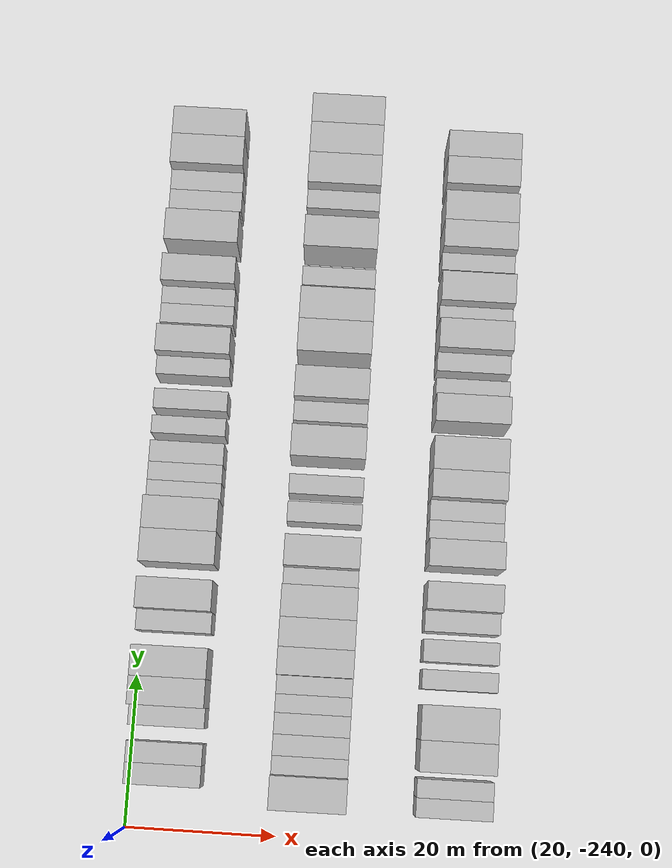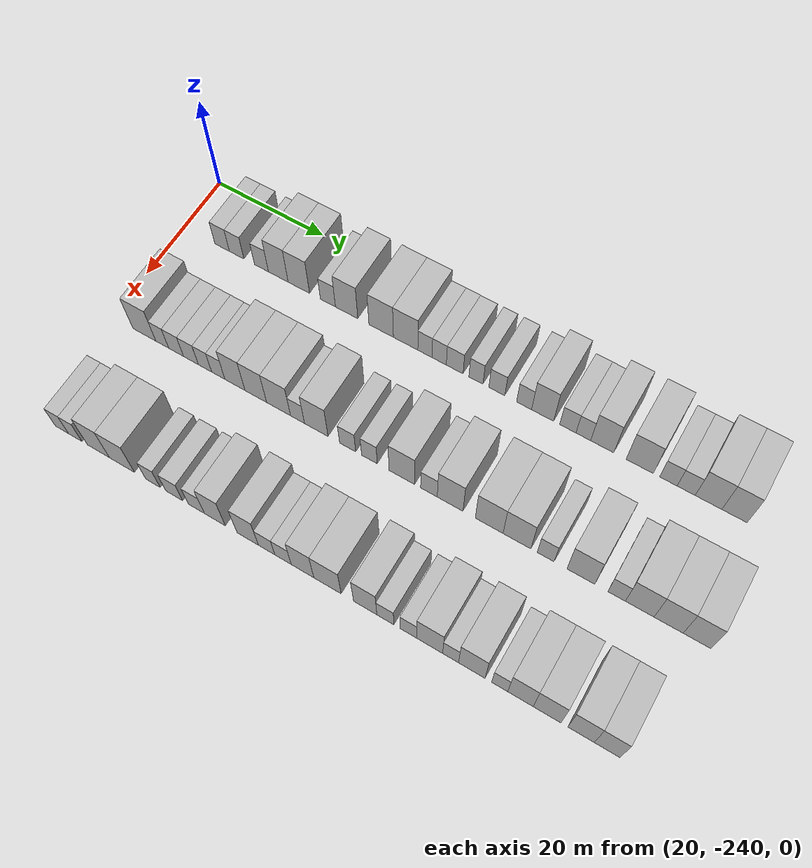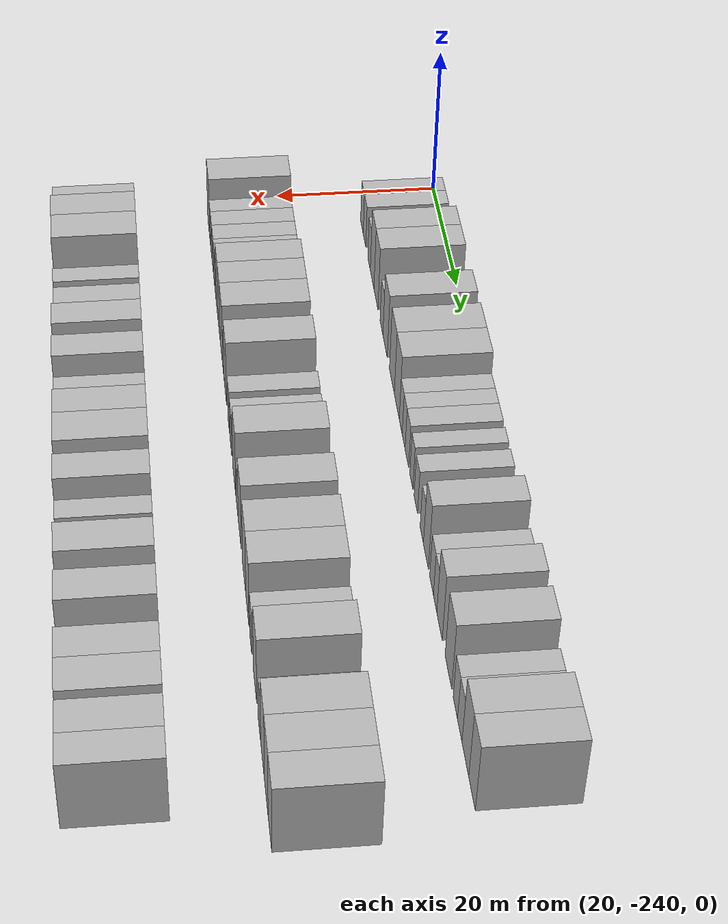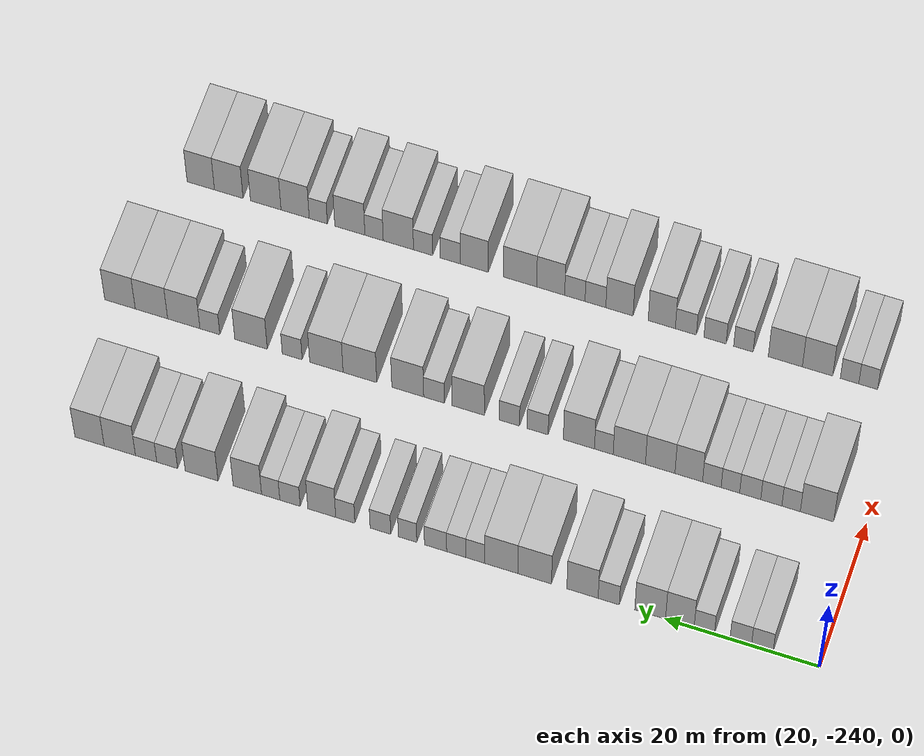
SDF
<sdf version="1.6">
 <world name="default">
  <model name="building_1">
   <static>1</static>
   <pose>25.0000 -232.6099 0 0.000000 0.000000 0.000000</pose>
   <link name="link">
    <pose>0 0 3.00 0 0 0</pose>
    <collision name="collision"><geometry><box><size>10.0000 2.7802 6.0000</size></box></geometry></collision>
    <visual name="visual">
     <cast_shadows>0</cast_shadows>
     <geometry><box><size>10.0000 2.7802 6.0000</size></box></geometry>
     <material>
      <script>
       <uri>model://HANNAS_wall/materials/scripts</uri>
       <uri>model://HANNAS_wall/materials/textures</uri>
       <name>vrc/HANNAS_wall</name>
      </script>
     </material>
    </visual>
   </link>
  </model>
  <model name="building_2">
   <static>1</static>
   <pose>25.0000 -229.8317 0 0.000000 0.000000 0.000000</pose>
   <link name="link">
    <pose>0 0 3.00 0 0 0</pose>
    <collision name="collision"><geometry><box><size>10.0000 2.7760 6.0000</size></box></geometry></collision>
    <visual name="visual">
     <cast_shadows>0</cast_shadows>
     <geometry><box><size>10.0000 2.7760 6.0000</size></box></geometry>
     <material>
      <script>
       <uri>model://HANNAS_wall/materials/scripts</uri>
       <uri>model://HANNAS_wall/materials/textures</uri>
       <name>vrc/HANNAS_wall</name>
      </script>
     </material>
    </visual>
   </link>
  </model>
  <model name="building_3">
   <static>1</static>
   <pose>25.0000 -225.1301 0 0.000000 0.000000 0.000000</pose>
   <link name="link">
    <pose>0 0 3.00 0 0 0</pose>
    <collision name="collision"><geometry><box><size>10.0000 2.6272 6.0000</size></box></geometry></collision>
    <visual name="visual">
     <cast_shadows>0</cast_shadows>
     <geometry><box><size>10.0000 2.6272 6.0000</size></box></geometry>
     <material>
      <script>
       <uri>model://HANNAS_wall/materials/scripts</uri>
       <uri>model://HANNAS_wall/materials/textures</uri>
       <name>vrc/HANNAS_wall</name>
      </script>
     </material>
    </visual>
   </link>
  </model>
  <model name="building_4">
   <static>1</static>
   <pose>25.0000 -221.9718 0 0.000000 0.000000 0.000000</pose>
   <link name="link">
    <pose>0 0 4.50 0 0 0</pose>
    <collision name="collision"><geometry><box><size>10.0000 3.6894 9.0000</size></box></geometry></collision>
    <visual name="visual">
     <cast_shadows>0</cast_shadows>
     <geometry><box><size>10.0000 3.6894 9.0000</size></box></geometry>
     <material>
      <script>
       <uri>model://HANNAS_wall/materials/scripts</uri>
       <uri>model://HANNAS_wall/materials/textures</uri>
       <name>vrc/HANNAS_wall</name>
      </script>
     </material>
    </visual>
   </link>
  </model>
  <model name="building_5">
   <static>1</static>
   <pose>25.0000 -218.1359 0 0.000000 0.000000 0.000000</pose>
   <link name="link">
    <pose>0 0 4.50 0 0 0</pose>
    <collision name="collision"><geometry><box><size>10.0000 3.9824 9.0000</size></box></geometry></collision>
    <visual name="visual">
     <cast_shadows>0</cast_shadows>
     <geometry><box><size>10.0000 3.9824 9.0000</size></box></geometry>
     <material>
      <script>
       <uri>model://HANNAS_wall/materials/scripts</uri>
       <uri>model://HANNAS_wall/materials/textures</uri>
       <name>vrc/HANNAS_wall</name>
      </script>
     </material>
    </visual>
   </link>
  </model>
  <model name="building_6">
   <static>1</static>
   <pose>25.0000 -212.7679 0 0.000000 0.000000 0.000000</pose>
   <link name="link">
    <pose>0 0 3.00 0 0 0</pose>
    <collision name="collision"><geometry><box><size>10.0000 2.7537 6.0000</size></box></geometry></collision>
    <visual name="visual">
     <cast_shadows>0</cast_shadows>
     <geometry><box><size>10.0000 2.7537 6.0000</size></box></geometry>
     <material>
      <script>
       <uri>model://HANNAS_wall/materials/scripts</uri>
       <uri>model://HANNAS_wall/materials/textures</uri>
       <name>vrc/HANNAS_wall</name>
      </script>
     </material>
    </visual>
   </link>
  </model>
  <model name="building_7">
   <static>1</static>
   <pose>25.0000 -209.3598 0 0.000000 0.000000 0.000000</pose>
   <link name="link">
    <pose>0 0 4.50 0 0 0</pose>
    <collision name="collision"><geometry><box><size>10.0000 4.0625 9.0000</size></box></geometry></collision>
    <visual name="visual">
     <cast_shadows>0</cast_shadows>
     <geometry><box><size>10.0000 4.0625 9.0000</size></box></geometry>
     <material>
      <script>
       <uri>model://HANNAS_wall/materials/scripts</uri>
       <uri>model://HANNAS_wall/materials/textures</uri>
       <name>vrc/HANNAS_wall</name>
      </script>
     </material>
    </visual>
   </link>
  </model>
  <model name="building_8">
   <static>1</static>
   <pose>25.0000 -203.1391 0 0.000000 0.000000 0.000000</pose>
   <link name="link">
    <pose>0 0 4.50 0 0 0</pose>
    <collision name="collision"><geometry><box><size>10.0000 4.3790 9.0000</size></box></geometry></collision>
    <visual name="visual">
     <cast_shadows>0</cast_shadows>
     <geometry><box><size>10.0000 4.3790 9.0000</size></box></geometry>
     <material>
      <script>
       <uri>model://HANNAS_wall/materials/scripts</uri>
       <uri>model://HANNAS_wall/materials/textures</uri>
       <name>vrc/HANNAS_wall</name>
      </script>
     </material>
    </visual>
   </link>
  </model>
  <model name="building_9">
   <static>1</static>
   <pose>25.0000 -198.7892 0 0.000000 0.000000 0.000000</pose>
   <link name="link">
    <pose>0 0 4.50 0 0 0</pose>
    <collision name="collision"><geometry><box><size>10.0000 4.3207 9.0000</size></box></geometry></collision>
    <visual name="visual">
     <cast_shadows>0</cast_shadows>
     <geometry><box><size>10.0000 4.3207 9.0000</size></box></geometry>
     <material>
      <script>
       <uri>model://HANNAS_wall/materials/scripts</uri>
       <uri>model://HANNAS_wall/materials/textures</uri>
       <name>vrc/HANNAS_wall</name>
      </script>
     </material>
    </visual>
   </link>
  </model>
  <model name="building_10">
   <static>1</static>
   <pose>25.0000 -195.3868 0 0.000000 0.000000 0.000000</pose>
   <link name="link">
    <pose>0 0 3.00 0 0 0</pose>
    <collision name="collision"><geometry><box><size>10.0000 2.4841 6.0000</size></box></geometry></collision>
    <visual name="visual">
     <cast_shadows>0</cast_shadows>
     <geometry><box><size>10.0000 2.4841 6.0000</size></box></geometry>
     <material>
      <script>
       <uri>model://HANNAS_wall/materials/scripts</uri>
       <uri>model://HANNAS_wall/materials/textures</uri>
       <name>vrc/HANNAS_wall</name>
      </script>
     </material>
    </visual>
   </link>
  </model>
  <model name="building_11">
   <static>1</static>
   <pose>25.0000 -192.8999 0 0.000000 0.000000 0.000000</pose>
   <link name="link">
    <pose>0 0 3.00 0 0 0</pose>
    <collision name="collision"><geometry><box><size>10.0000 2.4897 6.0000</size></box></geometry></collision>
    <visual name="visual">
     <cast_shadows>0</cast_shadows>
     <geometry><box><size>10.0000 2.4897 6.0000</size></box></geometry>
     <material>
      <script>
       <uri>model://HANNAS_wall/materials/scripts</uri>
       <uri>model://HANNAS_wall/materials/textures</uri>
       <name>vrc/HANNAS_wall</name>
      </script>
     </material>
    </visual>
   </link>
  </model>
  <model name="building_12">
   <static>1</static>
   <pose>25.0000 -190.2014 0 0.000000 0.000000 0.000000</pose>
   <link name="link">
    <pose>0 0 3.00 0 0 0</pose>
    <collision name="collision"><geometry><box><size>10.0000 2.9074 6.0000</size></box></geometry></collision>
    <visual name="visual">
     <cast_shadows>0</cast_shadows>
     <geometry><box><size>10.0000 2.9074 6.0000</size></box></geometry>
     <material>
      <script>
       <uri>model://HANNAS_wall/materials/scripts</uri>
       <uri>model://HANNAS_wall/materials/textures</uri>
       <name>vrc/HANNAS_wall</name>
      </script>
     </material>
    </visual>
   </link>
  </model>
  <model name="building_13">
   <static>1</static>
   <pose>25.0000 -186.5393 0 0.000000 0.000000 0.000000</pose>
   <link name="link">
    <pose>0 0 3.00 0 0 0</pose>
    <collision name="collision"><geometry><box><size>10.0000 2.4167 6.0000</size></box></geometry></collision>
    <visual name="visual">
     <cast_shadows>0</cast_shadows>
     <geometry><box><size>10.0000 2.4167 6.0000</size></box></geometry>
     <material>
      <script>
       <uri>model://HANNAS_wall/materials/scripts</uri>
       <uri>model://HANNAS_wall/materials/textures</uri>
       <name>vrc/HANNAS_wall</name>
      </script>
     </material>
    </visual>
   </link>
  </model>
  <model name="building_14">
   <static>1</static>
   <pose>25.0000 -182.9748 0 0.000000 0.000000 0.000000</pose>
   <link name="link">
    <pose>0 0 3.00 0 0 0</pose>
    <collision name="collision"><geometry><box><size>10.0000 2.7123 6.0000</size></box></geometry></collision>
    <visual name="visual">
     <cast_shadows>0</cast_shadows>
     <geometry><box><size>10.0000 2.7123 6.0000</size></box></geometry>
     <material>
      <script>
       <uri>model://HANNAS_wall/materials/scripts</uri>
       <uri>model://HANNAS_wall/materials/textures</uri>
       <name>vrc/HANNAS_wall</name>
      </script>
     </material>
    </visual>
   </link>
  </model>
  <model name="building_15">
   <static>1</static>
   <pose>25.0000 -178.3584 0 0.000000 0.000000 0.000000</pose>
   <link name="link">
    <pose>0 0 3.00 0 0 0</pose>
    <collision name="collision"><geometry><box><size>10.0000 2.5205 6.0000</size></box></geometry></collision>
    <visual name="visual">
     <cast_shadows>0</cast_shadows>
     <geometry><box><size>10.0000 2.5205 6.0000</size></box></geometry>
     <material>
      <script>
       <uri>model://HANNAS_wall/materials/scripts</uri>
       <uri>model://HANNAS_wall/materials/textures</uri>
       <name>vrc/HANNAS_wall</name>
      </script>
     </material>
    </visual>
   </link>
  </model>
  <model name="building_16">
   <static>1</static>
   <pose>25.0000 -175.2598 0 0.000000 0.000000 0.000000</pose>
   <link name="link">
    <pose>0 0 4.50 0 0 0</pose>
    <collision name="collision"><geometry><box><size>10.0000 3.6767 9.0000</size></box></geometry></collision>
    <visual name="visual">
     <cast_shadows>0</cast_shadows>
     <geometry><box><size>10.0000 3.6767 9.0000</size></box></geometry>
     <material>
      <script>
       <uri>model://HANNAS_wall/materials/scripts</uri>
       <uri>model://HANNAS_wall/materials/textures</uri>
       <name>vrc/HANNAS_wall</name>
      </script>
     </material>
    </visual>
   </link>
  </model>
  <model name="building_17">
   <static>1</static>
   <pose>25.0000 -171.0749 0 0.000000 0.000000 0.000000</pose>
   <link name="link">
    <pose>0 0 3.00 0 0 0</pose>
    <collision name="collision"><geometry><box><size>10.0000 2.6930 6.0000</size></box></geometry></collision>
    <visual name="visual">
     <cast_shadows>0</cast_shadows>
     <geometry><box><size>10.0000 2.6930 6.0000</size></box></geometry>
     <material>
      <script>
       <uri>model://HANNAS_wall/materials/scripts</uri>
       <uri>model://HANNAS_wall/materials/textures</uri>
       <name>vrc/HANNAS_wall</name>
      </script>
     </material>
    </visual>
   </link>
  </model>
  <model name="building_18">
   <static>1</static>
   <pose>25.0000 -168.5283 0 0.000000 0.000000 0.000000</pose>
   <link name="link">
    <pose>0 0 3.00 0 0 0</pose>
    <collision name="collision"><geometry><box><size>10.0000 2.4003 6.0000</size></box></geometry></collision>
    <visual name="visual">
     <cast_shadows>0</cast_shadows>
     <geometry><box><size>10.0000 2.4003 6.0000</size></box></geometry>
     <material>
      <script>
       <uri>model://HANNAS_wall/materials/scripts</uri>
       <uri>model://HANNAS_wall/materials/textures</uri>
       <name>vrc/HANNAS_wall</name>
      </script>
     </material>
    </visual>
   </link>
  </model>
  <model name="building_19">
   <static>1</static>
   <pose>25.0000 -165.4497 0 0.000000 0.000000 0.000000</pose>
   <link name="link">
    <pose>0 0 4.50 0 0 0</pose>
    <collision name="collision"><geometry><box><size>10.0000 3.7568 9.0000</size></box></geometry></collision>
    <visual name="visual">
     <cast_shadows>0</cast_shadows>
     <geometry><box><size>10.0000 3.7568 9.0000</size></box></geometry>
     <material>
      <script>
       <uri>model://HANNAS_wall/materials/scripts</uri>
       <uri>model://HANNAS_wall/materials/textures</uri>
       <name>vrc/HANNAS_wall</name>
      </script>
     </material>
    </visual>
   </link>
  </model>
  <model name="building_20">
   <static>1</static>
   <pose>25.0000 -159.3955 0 0.000000 0.000000 0.000000</pose>
   <link name="link">
    <pose>0 0 4.50 0 0 0</pose>
    <collision name="collision"><geometry><box><size>10.0000 4.3517 9.0000</size></box></geometry></collision>
    <visual name="visual">
     <cast_shadows>0</cast_shadows>
     <geometry><box><size>10.0000 4.3517 9.0000</size></box></geometry>
     <material>
      <script>
       <uri>model://HANNAS_wall/materials/scripts</uri>
       <uri>model://HANNAS_wall/materials/textures</uri>
       <name>vrc/HANNAS_wall</name>
      </script>
     </material>
    </visual>
   </link>
  </model>
  <model name="building_21">
   <static>1</static>
   <pose>25.0000 -154.8324 0 0.000000 0.000000 0.000000</pose>
   <link name="link">
    <pose>0 0 3.00 0 0 0</pose>
    <collision name="collision"><geometry><box><size>10.0000 2.7744 6.0000</size></box></geometry></collision>
    <visual name="visual">
     <cast_shadows>0</cast_shadows>
     <geometry><box><size>10.0000 2.7744 6.0000</size></box></geometry>
     <material>
      <script>
       <uri>model://HANNAS_wall/materials/scripts</uri>
       <uri>model://HANNAS_wall/materials/textures</uri>
       <name>vrc/HANNAS_wall</name>
      </script>
     </material>
    </visual>
   </link>
  </model>
  <model name="building_22">
   <static>1</static>
   <pose>25.0000 -152.0281 0 0.000000 0.000000 0.000000</pose>
   <link name="link">
    <pose>0 0 3.00 0 0 0</pose>
    <collision name="collision"><geometry><box><size>10.0000 2.8342 6.0000</size></box></geometry></collision>
    <visual name="visual">
     <cast_shadows>0</cast_shadows>
     <geometry><box><size>10.0000 2.8342 6.0000</size></box></geometry>
     <material>
      <script>
       <uri>model://HANNAS_wall/materials/scripts</uri>
       <uri>model://HANNAS_wall/materials/textures</uri>
       <name>vrc/HANNAS_wall</name>
      </script>
     </material>
    </visual>
   </link>
  </model>
  <model name="building_23">
   <static>1</static>
   <pose>25.0000 -148.5362 0 0.000000 0.000000 0.000000</pose>
   <link name="link">
    <pose>0 0 4.50 0 0 0</pose>
    <collision name="collision"><geometry><box><size>10.0000 4.1496 9.0000</size></box></geometry></collision>
    <visual name="visual">
     <cast_shadows>0</cast_shadows>
     <geometry><box><size>10.0000 4.1496 9.0000</size></box></geometry>
     <material>
      <script>
       <uri>model://HANNAS_wall/materials/scripts</uri>
       <uri>model://HANNAS_wall/materials/textures</uri>
       <name>vrc/HANNAS_wall</name>
      </script>
     </material>
    </visual>
   </link>
  </model>
  <model name="building_24">
   <static>1</static>
   <pose>25.0000 -144.5103 0 0.000000 0.000000 0.000000</pose>
   <link name="link">
    <pose>0 0 4.50 0 0 0</pose>
    <collision name="collision"><geometry><box><size>10.0000 3.9021 9.0000</size></box></geometry></collision>
    <visual name="visual">
     <cast_shadows>0</cast_shadows>
     <geometry><box><size>10.0000 3.9021 9.0000</size></box></geometry>
     <material>
      <script>
       <uri>model://HANNAS_wall/materials/scripts</uri>
       <uri>model://HANNAS_wall/materials/textures</uri>
       <name>vrc/HANNAS_wall</name>
      </script>
     </material>
    </visual>
   </link>
  </model>
  <model name="building_116">
   <static>1</static>
   <pose>44.0000 -233.8347 0 0.000000 0.000000 0.000000</pose>
   <link name="link">
    <pose>0 0 4.50 0 0 0</pose>
    <collision name="collision"><geometry><box><size>10.0000 4.3306 9.0000</size></box></geometry></collision>
    <visual name="visual">
     <cast_shadows>0</cast_shadows>
     <geometry><box><size>10.0000 4.3306 9.0000</size></box></geometry>
     <material>
      <script>
       <uri>model://HANNAS_wall/materials/scripts</uri>
       <uri>model://HANNAS_wall/materials/textures</uri>
       <name>vrc/HANNAS_wall</name>
      </script>
     </material>
    </visual>
   </link>
  </model>
  <model name="building_117">
   <static>1</static>
   <pose>44.0000 -230.4693 0 0.000000 0.000000 0.000000</pose>
   <link name="link">
    <pose>0 0 3.00 0 0 0</pose>
    <collision name="collision"><geometry><box><size>10.0000 2.4002 6.0000</size></box></geometry></collision>
    <visual name="visual">
     <cast_shadows>0</cast_shadows>
     <geometry><box><size>10.0000 2.4002 6.0000</size></box></geometry>
     <material>
      <script>
       <uri>model://HANNAS_wall/materials/scripts</uri>
       <uri>model://HANNAS_wall/materials/textures</uri>
       <name>vrc/HANNAS_wall</name>
      </script>
     </material>
    </visual>
   </link>
  </model>
  <model name="building_118">
   <static>1</static>
   <pose>44.0000 -227.8938 0 0.000000 0.000000 0.000000</pose>
   <link name="link">
    <pose>0 0 3.00 0 0 0</pose>
    <collision name="collision"><geometry><box><size>10.0000 2.7508 6.0000</size></box></geometry></collision>
    <visual name="visual">
     <cast_shadows>0</cast_shadows>
     <geometry><box><size>10.0000 2.7508 6.0000</size></box></geometry>
     <material>
      <script>
       <uri>model://HANNAS_wall/materials/scripts</uri>
       <uri>model://HANNAS_wall/materials/textures</uri>
       <name>vrc/HANNAS_wall</name>
      </script>
     </material>
    </visual>
   </link>
  </model>
  <model name="building_119">
   <static>1</static>
   <pose>44.0000 -225.1424 0 0.000000 0.000000 0.000000</pose>
   <link name="link">
    <pose>0 0 3.00 0 0 0</pose>
    <collision name="collision"><geometry><box><size>10.0000 2.7521 6.0000</size></box></geometry></collision>
    <visual name="visual">
     <cast_shadows>0</cast_shadows>
     <geometry><box><size>10.0000 2.7521 6.0000</size></box></geometry>
     <material>
      <script>
       <uri>model://HANNAS_wall/materials/scripts</uri>
       <uri>model://HANNAS_wall/materials/textures</uri>
       <name>vrc/HANNAS_wall</name>
      </script>
     </material>
    </visual>
   </link>
  </model>
  <model name="building_120">
   <static>1</static>
   <pose>44.0000 -222.5571 0 0.000000 0.000000 0.000000</pose>
   <link name="link">
    <pose>0 0 3.00 0 0 0</pose>
    <collision name="collision"><geometry><box><size>10.0000 2.4184 6.0000</size></box></geometry></collision>
    <visual name="visual">
     <cast_shadows>0</cast_shadows>
     <geometry><box><size>10.0000 2.4184 6.0000</size></box></geometry>
     <material>
      <script>
       <uri>model://HANNAS_wall/materials/scripts</uri>
       <uri>model://HANNAS_wall/materials/textures</uri>
       <name>vrc/HANNAS_wall</name>
      </script>
     </material>
    </visual>
   </link>
  </model>
  <model name="building_121">
   <static>1</static>
   <pose>44.0000 -220.1347 0 0.000000 0.000000 0.000000</pose>
   <link name="link">
    <pose>0 0 3.00 0 0 0</pose>
    <collision name="collision"><geometry><box><size>10.0000 2.4264 6.0000</size></box></geometry></collision>
    <visual name="visual">
     <cast_shadows>0</cast_shadows>
     <geometry><box><size>10.0000 2.4264 6.0000</size></box></geometry>
     <material>
      <script>
       <uri>model://HANNAS_wall/materials/scripts</uri>
       <uri>model://HANNAS_wall/materials/textures</uri>
       <name>vrc/HANNAS_wall</name>
      </script>
     </material>
    </visual>
   </link>
  </model>
  <model name="building_122">
   <static>1</static>
   <pose>44.0000 -217.1138 0 0.000000 0.000000 0.000000</pose>
   <link name="link">
    <pose>0 0 4.50 0 0 0</pose>
    <collision name="collision"><geometry><box><size>10.0000 3.6154 9.0000</size></box></geometry></collision>
    <visual name="visual">
     <cast_shadows>0</cast_shadows>
     <geometry><box><size>10.0000 3.6154 9.0000</size></box></geometry>
     <material>
      <script>
       <uri>model://HANNAS_wall/materials/scripts</uri>
       <uri>model://HANNAS_wall/materials/textures</uri>
       <name>vrc/HANNAS_wall</name>
      </script>
     </material>
    </visual>
   </link>
  </model>
  <model name="building_123">
   <static>1</static>
   <pose>44.0000 -213.3755 0 0.000000 0.000000 0.000000</pose>
   <link name="link">
    <pose>0 0 4.50 0 0 0</pose>
    <collision name="collision"><geometry><box><size>10.0000 3.8612 9.0000</size></box></geometry></collision>
    <visual name="visual">
     <cast_shadows>0</cast_shadows>
     <geometry><box><size>10.0000 3.8612 9.0000</size></box></geometry>
     <material>
      <script>
       <uri>model://HANNAS_wall/materials/scripts</uri>
       <uri>model://HANNAS_wall/materials/textures</uri>
       <name>vrc/HANNAS_wall</name>
      </script>
     </material>
    </visual>
   </link>
  </model>
  <model name="building_124">
   <static>1</static>
   <pose>44.0000 -209.3266 0 0.000000 0.000000 0.000000</pose>
   <link name="link">
    <pose>0 0 4.50 0 0 0</pose>
    <collision name="collision"><geometry><box><size>10.0000 4.2366 9.0000</size></box></geometry></collision>
    <visual name="visual">
     <cast_shadows>0</cast_shadows>
     <geometry><box><size>10.0000 4.2366 9.0000</size></box></geometry>
     <material>
      <script>
       <uri>model://HANNAS_wall/materials/scripts</uri>
       <uri>model://HANNAS_wall/materials/textures</uri>
       <name>vrc/HANNAS_wall</name>
      </script>
     </material>
    </visual>
   </link>
  </model>
  <model name="building_125">
   <static>1</static>
   <pose>44.0000 -205.9829 0 0.000000 0.000000 0.000000</pose>
   <link name="link">
    <pose>0 0 3.00 0 0 0</pose>
    <collision name="collision"><geometry><box><size>10.0000 2.4507 6.0000</size></box></geometry></collision>
    <visual name="visual">
     <cast_shadows>0</cast_shadows>
     <geometry><box><size>10.0000 2.4507 6.0000</size></box></geometry>
     <material>
      <script>
       <uri>model://HANNAS_wall/materials/scripts</uri>
       <uri>model://HANNAS_wall/materials/textures</uri>
       <name>vrc/HANNAS_wall</name>
      </script>
     </material>
    </visual>
   </link>
  </model>
  <model name="building_126">
   <static>1</static>
   <pose>44.0000 -202.7078 0 0.000000 0.000000 0.000000</pose>
   <link name="link">
    <pose>0 0 4.50 0 0 0</pose>
    <collision name="collision"><geometry><box><size>10.0000 4.0996 9.0000</size></box></geometry></collision>
    <visual name="visual">
     <cast_shadows>0</cast_shadows>
     <geometry><box><size>10.0000 4.0996 9.0000</size></box></geometry>
     <material>
      <script>
       <uri>model://HANNAS_wall/materials/scripts</uri>
       <uri>model://HANNAS_wall/materials/textures</uri>
       <name>vrc/HANNAS_wall</name>
      </script>
     </material>
    </visual>
   </link>
  </model>
  <model name="building_127">
   <static>1</static>
   <pose>44.0000 -197.2748 0 0.000000 0.000000 0.000000</pose>
   <link name="link">
    <pose>0 0 3.00 0 0 0</pose>
    <collision name="collision"><geometry><box><size>10.0000 2.7664 6.0000</size></box></geometry></collision>
    <visual name="visual">
     <cast_shadows>0</cast_shadows>
     <geometry><box><size>10.0000 2.7664 6.0000</size></box></geometry>
     <material>
      <script>
       <uri>model://HANNAS_wall/materials/scripts</uri>
       <uri>model://HANNAS_wall/materials/textures</uri>
       <name>vrc/HANNAS_wall</name>
      </script>
     </material>
    </visual>
   </link>
  </model>
  <model name="building_128">
   <static>1</static>
   <pose>44.0000 -193.5607 0 0.000000 0.000000 0.000000</pose>
   <link name="link">
    <pose>0 0 3.00 0 0 0</pose>
    <collision name="collision"><geometry><box><size>10.0000 2.6619 6.0000</size></box></geometry></collision>
    <visual name="visual">
     <cast_shadows>0</cast_shadows>
     <geometry><box><size>10.0000 2.6619 6.0000</size></box></geometry>
     <material>
      <script>
       <uri>model://HANNAS_wall/materials/scripts</uri>
       <uri>model://HANNAS_wall/materials/textures</uri>
       <name>vrc/HANNAS_wall</name>
      </script>
     </material>
    </visual>
   </link>
  </model>
  <model name="building_129">
   <static>1</static>
   <pose>44.0000 -188.0911 0 0.000000 0.000000 0.000000</pose>
   <link name="link">
    <pose>0 0 4.50 0 0 0</pose>
    <collision name="collision"><geometry><box><size>10.0000 4.2774 9.0000</size></box></geometry></collision>
    <visual name="visual">
     <cast_shadows>0</cast_shadows>
     <geometry><box><size>10.0000 4.2774 9.0000</size></box></geometry>
     <material>
      <script>
       <uri>model://HANNAS_wall/materials/scripts</uri>
       <uri>model://HANNAS_wall/materials/textures</uri>
       <name>vrc/HANNAS_wall</name>
      </script>
     </material>
    </visual>
   </link>
  </model>
  <model name="building_130">
   <static>1</static>
   <pose>44.0000 -183.5772 0 0.000000 0.000000 0.000000</pose>
   <link name="link">
    <pose>0 0 3.00 0 0 0</pose>
    <collision name="collision"><geometry><box><size>10.0000 2.7503 6.0000</size></box></geometry></collision>
    <visual name="visual">
     <cast_shadows>0</cast_shadows>
     <geometry><box><size>10.0000 2.7503 6.0000</size></box></geometry>
     <material>
      <script>
       <uri>model://HANNAS_wall/materials/scripts</uri>
       <uri>model://HANNAS_wall/materials/textures</uri>
       <name>vrc/HANNAS_wall</name>
      </script>
     </material>
    </visual>
   </link>
  </model>
  <model name="building_131">
   <static>1</static>
   <pose>44.0000 -180.0854 0 0.000000 0.000000 0.000000</pose>
   <link name="link">
    <pose>0 0 4.50 0 0 0</pose>
    <collision name="collision"><geometry><box><size>10.0000 4.2333 9.0000</size></box></geometry></collision>
    <visual name="visual">
     <cast_shadows>0</cast_shadows>
     <geometry><box><size>10.0000 4.2333 9.0000</size></box></geometry>
     <material>
      <script>
       <uri>model://HANNAS_wall/materials/scripts</uri>
       <uri>model://HANNAS_wall/materials/textures</uri>
       <name>vrc/HANNAS_wall</name>
      </script>
     </material>
    </visual>
   </link>
  </model>
  <model name="building_132">
   <static>1</static>
   <pose>44.0000 -173.7290 0 0.000000 0.000000 0.000000</pose>
   <link name="link">
    <pose>0 0 4.50 0 0 0</pose>
    <collision name="collision"><geometry><box><size>10.0000 4.4796 9.0000</size></box></geometry></collision>
    <visual name="visual">
     <cast_shadows>0</cast_shadows>
     <geometry><box><size>10.0000 4.4796 9.0000</size></box></geometry>
     <material>
      <script>
       <uri>model://HANNAS_wall/materials/scripts</uri>
       <uri>model://HANNAS_wall/materials/textures</uri>
       <name>vrc/HANNAS_wall</name>
      </script>
     </material>
    </visual>
   </link>
  </model>
  <model name="building_133">
   <static>1</static>
   <pose>44.0000 -169.2643 0 0.000000 0.000000 0.000000</pose>
   <link name="link">
    <pose>0 0 4.50 0 0 0</pose>
    <collision name="collision"><geometry><box><size>10.0000 4.4498 9.0000</size></box></geometry></collision>
    <visual name="visual">
     <cast_shadows>0</cast_shadows>
     <geometry><box><size>10.0000 4.4498 9.0000</size></box></geometry>
     <material>
      <script>
       <uri>model://HANNAS_wall/materials/scripts</uri>
       <uri>model://HANNAS_wall/materials/textures</uri>
       <name>vrc/HANNAS_wall</name>
      </script>
     </material>
    </visual>
   </link>
  </model>
  <model name="building_134">
   <static>1</static>
   <pose>44.0000 -164.7091 0 0.000000 0.000000 0.000000</pose>
   <link name="link">
    <pose>0 0 3.00 0 0 0</pose>
    <collision name="collision"><geometry><box><size>10.0000 2.6605 6.0000</size></box></geometry></collision>
    <visual name="visual">
     <cast_shadows>0</cast_shadows>
     <geometry><box><size>10.0000 2.6605 6.0000</size></box></geometry>
     <material>
      <script>
       <uri>model://HANNAS_wall/materials/scripts</uri>
       <uri>model://HANNAS_wall/materials/textures</uri>
       <name>vrc/HANNAS_wall</name>
      </script>
     </material>
    </visual>
   </link>
  </model>
  <model name="building_135">
   <static>1</static>
   <pose>44.0000 -159.2043 0 0.000000 0.000000 0.000000</pose>
   <link name="link">
    <pose>0 0 4.50 0 0 0</pose>
    <collision name="collision"><geometry><box><size>10.0000 4.3491 9.0000</size></box></geometry></collision>
    <visual name="visual">
     <cast_shadows>0</cast_shadows>
     <geometry><box><size>10.0000 4.3491 9.0000</size></box></geometry>
     <material>
      <script>
       <uri>model://HANNAS_wall/materials/scripts</uri>
       <uri>model://HANNAS_wall/materials/textures</uri>
       <name>vrc/HANNAS_wall</name>
      </script>
     </material>
    </visual>
   </link>
  </model>
  <model name="building_136">
   <static>1</static>
   <pose>44.0000 -153.6921 0 0.000000 0.000000 0.000000</pose>
   <link name="link">
    <pose>0 0 3.00 0 0 0</pose>
    <collision name="collision"><geometry><box><size>10.0000 2.6754 6.0000</size></box></geometry></collision>
    <visual name="visual">
     <cast_shadows>0</cast_shadows>
     <geometry><box><size>10.0000 2.6754 6.0000</size></box></geometry>
     <material>
      <script>
       <uri>model://HANNAS_wall/materials/scripts</uri>
       <uri>model://HANNAS_wall/materials/textures</uri>
       <name>vrc/HANNAS_wall</name>
      </script>
     </material>
    </visual>
   </link>
  </model>
  <model name="building_137">
   <static>1</static>
   <pose>44.0000 -150.1862 0 0.000000 0.000000 0.000000</pose>
   <link name="link">
    <pose>0 0 4.50 0 0 0</pose>
    <collision name="collision"><geometry><box><size>10.0000 4.3364 9.0000</size></box></geometry></collision>
    <visual name="visual">
     <cast_shadows>0</cast_shadows>
     <geometry><box><size>10.0000 4.3364 9.0000</size></box></geometry>
     <material>
      <script>
       <uri>model://HANNAS_wall/materials/scripts</uri>
       <uri>model://HANNAS_wall/materials/textures</uri>
       <name>vrc/HANNAS_wall</name>
      </script>
     </material>
    </visual>
   </link>
  </model>
  <model name="building_138">
   <static>1</static>
   <pose>44.0000 -145.8384 0 0.000000 0.000000 0.000000</pose>
   <link name="link">
    <pose>0 0 4.50 0 0 0</pose>
    <collision name="collision"><geometry><box><size>10.0000 4.3591 9.0000</size></box></geometry></collision>
    <visual name="visual">
     <cast_shadows>0</cast_shadows>
     <geometry><box><size>10.0000 4.3591 9.0000</size></box></geometry>
     <material>
      <script>
       <uri>model://HANNAS_wall/materials/scripts</uri>
       <uri>model://HANNAS_wall/materials/textures</uri>
       <name>vrc/HANNAS_wall</name>
      </script>
     </material>
    </visual>
   </link>
  </model>
  <model name="building_139">
   <static>1</static>
   <pose>44.0000 -141.6077 0 0.000000 0.000000 0.000000</pose>
   <link name="link">
    <pose>0 0 4.50 0 0 0</pose>
    <collision name="collision"><geometry><box><size>10.0000 4.1023 9.0000</size></box></geometry></collision>
    <visual name="visual">
     <cast_shadows>0</cast_shadows>
     <geometry><box><size>10.0000 4.1023 9.0000</size></box></geometry>
     <material>
      <script>
       <uri>model://HANNAS_wall/materials/scripts</uri>
       <uri>model://HANNAS_wall/materials/textures</uri>
       <name>vrc/HANNAS_wall</name>
      </script>
     </material>
    </visual>
   </link>
  </model>
  <model name="building_237">
   <static>1</static>
   <pose>63.0000 -234.7616 0 0.000000 0.000000 0.000000</pose>
   <link name="link">
    <pose>0 0 3.00 0 0 0</pose>
    <collision name="collision"><geometry><box><size>10.0000 2.4768 6.0000</size></box></geometry></collision>
    <visual name="visual">
     <cast_shadows>0</cast_shadows>
     <geometry><box><size>10.0000 2.4768 6.0000</size></box></geometry>
     <material>
      <script>
       <uri>model://HANNAS_wall/materials/scripts</uri>
       <uri>model://HANNAS_wall/materials/textures</uri>
       <name>vrc/HANNAS_wall</name>
      </script>
     </material>
    </visual>
   </link>
  </model>
  <model name="building_238">
   <static>1</static>
   <pose>63.0000 -232.3121 0 0.000000 0.000000 0.000000</pose>
   <link name="link">
    <pose>0 0 3.00 0 0 0</pose>
    <collision name="collision"><geometry><box><size>10.0000 2.4221 6.0000</size></box></geometry></collision>
    <visual name="visual">
     <cast_shadows>0</cast_shadows>
     <geometry><box><size>10.0000 2.4221 6.0000</size></box></geometry>
     <material>
      <script>
       <uri>model://HANNAS_wall/materials/scripts</uri>
       <uri>model://HANNAS_wall/materials/textures</uri>
       <name>vrc/HANNAS_wall</name>
      </script>
     </material>
    </visual>
   </link>
  </model>
  <model name="building_239">
   <static>1</static>
   <pose>63.0000 -228.1073 0 0.000000 0.000000 0.000000</pose>
   <link name="link">
    <pose>0 0 4.50 0 0 0</pose>
    <collision name="collision"><geometry><box><size>10.0000 3.9876 9.0000</size></box></geometry></collision>
    <visual name="visual">
     <cast_shadows>0</cast_shadows>
     <geometry><box><size>10.0000 3.9876 9.0000</size></box></geometry>
     <material>
      <script>
       <uri>model://HANNAS_wall/materials/scripts</uri>
       <uri>model://HANNAS_wall/materials/textures</uri>
       <name>vrc/HANNAS_wall</name>
      </script>
     </material>
    </visual>
   </link>
  </model>
  <model name="building_240">
   <static>1</static>
   <pose>63.0000 -223.8671 0 0.000000 0.000000 0.000000</pose>
   <link name="link">
    <pose>0 0 4.50 0 0 0</pose>
    <collision name="collision"><geometry><box><size>10.0000 4.4929 9.0000</size></box></geometry></collision>
    <visual name="visual">
     <cast_shadows>0</cast_shadows>
     <geometry><box><size>10.0000 4.4929 9.0000</size></box></geometry>
     <material>
      <script>
       <uri>model://HANNAS_wall/materials/scripts</uri>
       <uri>model://HANNAS_wall/materials/textures</uri>
       <name>vrc/HANNAS_wall</name>
      </script>
     </material>
    </visual>
   </link>
  </model>
  <model name="building_241">
   <static>1</static>
   <pose>63.0000 -218.3369 0 0.000000 0.000000 0.000000</pose>
   <link name="link">
    <pose>0 0 3.00 0 0 0</pose>
    <collision name="collision"><geometry><box><size>10.0000 2.5675 6.0000</size></box></geometry></collision>
    <visual name="visual">
     <cast_shadows>0</cast_shadows>
     <geometry><box><size>10.0000 2.5675 6.0000</size></box></geometry>
     <material>
      <script>
       <uri>model://HANNAS_wall/materials/scripts</uri>
       <uri>model://HANNAS_wall/materials/textures</uri>
       <name>vrc/HANNAS_wall</name>
      </script>
     </material>
    </visual>
   </link>
  </model>
  <model name="building_242">
   <static>1</static>
   <pose>63.0000 -214.5851 0 0.000000 0.000000 0.000000</pose>
   <link name="link">
    <pose>0 0 3.00 0 0 0</pose>
    <collision name="collision"><geometry><box><size>10.0000 2.9360 6.0000</size></box></geometry></collision>
    <visual name="visual">
     <cast_shadows>0</cast_shadows>
     <geometry><box><size>10.0000 2.9360 6.0000</size></box></geometry>
     <material>
      <script>
       <uri>model://HANNAS_wall/materials/scripts</uri>
       <uri>model://HANNAS_wall/materials/textures</uri>
       <name>vrc/HANNAS_wall</name>
      </script>
     </material>
    </visual>
   </link>
  </model>
  <model name="building_243">
   <static>1</static>
   <pose>63.0000 -210.7243 0 0.000000 0.000000 0.000000</pose>
   <link name="link">
    <pose>0 0 3.00 0 0 0</pose>
    <collision name="collision"><geometry><box><size>10.0000 2.7856 6.0000</size></box></geometry></collision>
    <visual name="visual">
     <cast_shadows>0</cast_shadows>
     <geometry><box><size>10.0000 2.7856 6.0000</size></box></geometry>
     <material>
      <script>
       <uri>model://HANNAS_wall/materials/scripts</uri>
       <uri>model://HANNAS_wall/materials/textures</uri>
       <name>vrc/HANNAS_wall</name>
      </script>
     </material>
    </visual>
   </link>
  </model>
  <model name="building_244">
   <static>1</static>
   <pose>63.0000 -207.5299 0 0.000000 0.000000 0.000000</pose>
   <link name="link">
    <pose>0 0 4.50 0 0 0</pose>
    <collision name="collision"><geometry><box><size>10.0000 3.6032 9.0000</size></box></geometry></collision>
    <visual name="visual">
     <cast_shadows>0</cast_shadows>
     <geometry><box><size>10.0000 3.6032 9.0000</size></box></geometry>
     <material>
      <script>
       <uri>model://HANNAS_wall/materials/scripts</uri>
       <uri>model://HANNAS_wall/materials/textures</uri>
       <name>vrc/HANNAS_wall</name>
      </script>
     </material>
    </visual>
   </link>
  </model>
  <model name="building_245">
   <static>1</static>
   <pose>63.0000 -201.9172 0 0.000000 0.000000 0.000000</pose>
   <link name="link">
    <pose>0 0 4.50 0 0 0</pose>
    <collision name="collision"><geometry><box><size>10.0000 3.6222 9.0000</size></box></geometry></collision>
    <visual name="visual">
     <cast_shadows>0</cast_shadows>
     <geometry><box><size>10.0000 3.6222 9.0000</size></box></geometry>
     <material>
      <script>
       <uri>model://HANNAS_wall/materials/scripts</uri>
       <uri>model://HANNAS_wall/materials/textures</uri>
       <name>vrc/HANNAS_wall</name>
      </script>
     </material>
    </visual>
   </link>
  </model>
  <model name="building_246">
   <static>1</static>
   <pose>63.0000 -198.7202 0 0.000000 0.000000 0.000000</pose>
   <link name="link">
    <pose>0 0 3.00 0 0 0</pose>
    <collision name="collision"><geometry><box><size>10.0000 2.7716 6.0000</size></box></geometry></collision>
    <visual name="visual">
     <cast_shadows>0</cast_shadows>
     <geometry><box><size>10.0000 2.7716 6.0000</size></box></geometry>
     <material>
      <script>
       <uri>model://HANNAS_wall/materials/scripts</uri>
       <uri>model://HANNAS_wall/materials/textures</uri>
       <name>vrc/HANNAS_wall</name>
      </script>
     </material>
    </visual>
   </link>
  </model>
  <model name="building_247">
   <static>1</static>
   <pose>63.0000 -195.9802 0 0.000000 0.000000 0.000000</pose>
   <link name="link">
    <pose>0 0 3.00 0 0 0</pose>
    <collision name="collision"><geometry><box><size>10.0000 2.7084 6.0000</size></box></geometry></collision>
    <visual name="visual">
     <cast_shadows>0</cast_shadows>
     <geometry><box><size>10.0000 2.7084 6.0000</size></box></geometry>
     <material>
      <script>
       <uri>model://HANNAS_wall/materials/scripts</uri>
       <uri>model://HANNAS_wall/materials/textures</uri>
       <name>vrc/HANNAS_wall</name>
      </script>
     </material>
    </visual>
   </link>
  </model>
  <model name="building_248">
   <static>1</static>
   <pose>63.0000 -192.7599 0 0.000000 0.000000 0.000000</pose>
   <link name="link">
    <pose>0 0 4.50 0 0 0</pose>
    <collision name="collision"><geometry><box><size>10.0000 3.7323 9.0000</size></box></geometry></collision>
    <visual name="visual">
     <cast_shadows>0</cast_shadows>
     <geometry><box><size>10.0000 3.7323 9.0000</size></box></geometry>
     <material>
      <script>
       <uri>model://HANNAS_wall/materials/scripts</uri>
       <uri>model://HANNAS_wall/materials/textures</uri>
       <name>vrc/HANNAS_wall</name>
      </script>
     </material>
    </visual>
   </link>
  </model>
  <model name="building_249">
   <static>1</static>
   <pose>63.0000 -188.6616 0 0.000000 0.000000 0.000000</pose>
   <link name="link">
    <pose>0 0 4.50 0 0 0</pose>
    <collision name="collision"><geometry><box><size>10.0000 4.4644 9.0000</size></box></geometry></collision>
    <visual name="visual">
     <cast_shadows>0</cast_shadows>
     <geometry><box><size>10.0000 4.4644 9.0000</size></box></geometry>
     <material>
      <script>
       <uri>model://HANNAS_wall/materials/scripts</uri>
       <uri>model://HANNAS_wall/materials/textures</uri>
       <name>vrc/HANNAS_wall</name>
      </script>
     </material>
    </visual>
   </link>
  </model>
  <model name="building_250">
   <static>1</static>
   <pose>63.0000 -182.5528 0 0.000000 0.000000 0.000000</pose>
   <link name="link">
    <pose>0 0 4.50 0 0 0</pose>
    <collision name="collision"><geometry><box><size>10.0000 3.7532 9.0000</size></box></geometry></collision>
    <visual name="visual">
     <cast_shadows>0</cast_shadows>
     <geometry><box><size>10.0000 3.7532 9.0000</size></box></geometry>
     <material>
      <script>
       <uri>model://HANNAS_wall/materials/scripts</uri>
       <uri>model://HANNAS_wall/materials/textures</uri>
       <name>vrc/HANNAS_wall</name>
      </script>
     </material>
    </visual>
   </link>
  </model>
  <model name="building_251">
   <static>1</static>
   <pose>63.0000 -179.3258 0 0.000000 0.000000 0.000000</pose>
   <link name="link">
    <pose>0 0 3.00 0 0 0</pose>
    <collision name="collision"><geometry><box><size>10.0000 2.7009 6.0000</size></box></geometry></collision>
    <visual name="visual">
     <cast_shadows>0</cast_shadows>
     <geometry><box><size>10.0000 2.7009 6.0000</size></box></geometry>
     <material>
      <script>
       <uri>model://HANNAS_wall/materials/scripts</uri>
       <uri>model://HANNAS_wall/materials/textures</uri>
       <name>vrc/HANNAS_wall</name>
      </script>
     </material>
    </visual>
   </link>
  </model>
  <model name="building_252">
   <static>1</static>
   <pose>63.0000 -175.6842 0 0.000000 0.000000 0.000000</pose>
   <link name="link">
    <pose>0 0 3.00 0 0 0</pose>
    <collision name="collision"><geometry><box><size>10.0000 2.5822 6.0000</size></box></geometry></collision>
    <visual name="visual">
     <cast_shadows>0</cast_shadows>
     <geometry><box><size>10.0000 2.5822 6.0000</size></box></geometry>
     <material>
      <script>
       <uri>model://HANNAS_wall/materials/scripts</uri>
       <uri>model://HANNAS_wall/materials/textures</uri>
       <name>vrc/HANNAS_wall</name>
      </script>
     </material>
    </visual>
   </link>
  </model>
  <model name="building_253">
   <static>1</static>
   <pose>63.0000 -172.3594 0 0.000000 0.000000 0.000000</pose>
   <link name="link">
    <pose>0 0 4.50 0 0 0</pose>
    <collision name="collision"><geometry><box><size>10.0000 4.0675 9.0000</size></box></geometry></collision>
    <visual name="visual">
     <cast_shadows>0</cast_shadows>
     <geometry><box><size>10.0000 4.0675 9.0000</size></box></geometry>
     <material>
      <script>
       <uri>model://HANNAS_wall/materials/scripts</uri>
       <uri>model://HANNAS_wall/materials/textures</uri>
       <name>vrc/HANNAS_wall</name>
      </script>
     </material>
    </visual>
   </link>
  </model>
  <model name="building_254">
   <static>1</static>
   <pose>63.0000 -169.0908 0 0.000000 0.000000 0.000000</pose>
   <link name="link">
    <pose>0 0 3.00 0 0 0</pose>
    <collision name="collision"><geometry><box><size>10.0000 2.4696 6.0000</size></box></geometry></collision>
    <visual name="visual">
     <cast_shadows>0</cast_shadows>
     <geometry><box><size>10.0000 2.4696 6.0000</size></box></geometry>
     <material>
      <script>
       <uri>model://HANNAS_wall/materials/scripts</uri>
       <uri>model://HANNAS_wall/materials/textures</uri>
       <name>vrc/HANNAS_wall</name>
      </script>
     </material>
    </visual>
   </link>
  </model>
  <model name="building_255">
   <static>1</static>
   <pose>63.0000 -165.8255 0 0.000000 0.000000 0.000000</pose>
   <link name="link">
    <pose>0 0 4.50 0 0 0</pose>
    <collision name="collision"><geometry><box><size>10.0000 4.0612 9.0000</size></box></geometry></collision>
    <visual name="visual">
     <cast_shadows>0</cast_shadows>
     <geometry><box><size>10.0000 4.0612 9.0000</size></box></geometry>
     <material>
      <script>
       <uri>model://HANNAS_wall/materials/scripts</uri>
       <uri>model://HANNAS_wall/materials/textures</uri>
       <name>vrc/HANNAS_wall</name>
      </script>
     </material>
    </visual>
   </link>
  </model>
  <model name="building_256">
   <static>1</static>
   <pose>63.0000 -161.5704 0 0.000000 0.000000 0.000000</pose>
   <link name="link">
    <pose>0 0 3.00 0 0 0</pose>
    <collision name="collision"><geometry><box><size>10.0000 2.4490 6.0000</size></box></geometry></collision>
    <visual name="visual">
     <cast_shadows>0</cast_shadows>
     <geometry><box><size>10.0000 2.4490 6.0000</size></box></geometry>
     <material>
      <script>
       <uri>model://HANNAS_wall/materials/scripts</uri>
       <uri>model://HANNAS_wall/materials/textures</uri>
       <name>vrc/HANNAS_wall</name>
      </script>
     </material>
    </visual>
   </link>
  </model>
  <model name="building_257">
   <static>1</static>
   <pose>63.0000 -158.4376 0 0.000000 0.000000 0.000000</pose>
   <link name="link">
    <pose>0 0 4.50 0 0 0</pose>
    <collision name="collision"><geometry><box><size>10.0000 3.8167 9.0000</size></box></geometry></collision>
    <visual name="visual">
     <cast_shadows>0</cast_shadows>
     <geometry><box><size>10.0000 3.8167 9.0000</size></box></geometry>
     <material>
      <script>
       <uri>model://HANNAS_wall/materials/scripts</uri>
       <uri>model://HANNAS_wall/materials/textures</uri>
       <name>vrc/HANNAS_wall</name>
      </script>
     </material>
    </visual>
   </link>
  </model>
  <model name="building_258">
   <static>1</static>
   <pose>63.0000 -154.4609 0 0.000000 0.000000 0.000000</pose>
   <link name="link">
    <pose>0 0 4.50 0 0 0</pose>
    <collision name="collision"><geometry><box><size>10.0000 4.1367 9.0000</size></box></geometry></collision>
    <visual name="visual">
     <cast_shadows>0</cast_shadows>
     <geometry><box><size>10.0000 4.1367 9.0000</size></box></geometry>
     <material>
      <script>
       <uri>model://HANNAS_wall/materials/scripts</uri>
       <uri>model://HANNAS_wall/materials/textures</uri>
       <name>vrc/HANNAS_wall</name>
      </script>
     </material>
    </visual>
   </link>
  </model>
  <model name="building_259">
   <static>1</static>
   <pose>63.0000 -149.4540 0 0.000000 0.000000 0.000000</pose>
   <link name="link">
    <pose>0 0 4.50 0 0 0</pose>
    <collision name="collision"><geometry><box><size>10.0000 3.8772 9.0000</size></box></geometry></collision>
    <visual name="visual">
     <cast_shadows>0</cast_shadows>
     <geometry><box><size>10.0000 3.8772 9.0000</size></box></geometry>
     <material>
      <script>
       <uri>model://HANNAS_wall/materials/scripts</uri>
       <uri>model://HANNAS_wall/materials/textures</uri>
       <name>vrc/HANNAS_wall</name>
      </script>
     </material>
    </visual>
   </link>
  </model>
  <model name="building_260">
   <static>1</static>
   <pose>63.0000 -145.6600 0 0.000000 0.000000 0.000000</pose>
   <link name="link">
    <pose>0 0 4.50 0 0 0</pose>
    <collision name="collision"><geometry><box><size>10.0000 3.7109 9.0000</size></box></geometry></collision>
    <visual name="visual">
     <cast_shadows>0</cast_shadows>
     <geometry><box><size>10.0000 3.7109 9.0000</size></box></geometry>
     <material>
      <script>
       <uri>model://HANNAS_wall/materials/scripts</uri>
       <uri>model://HANNAS_wall/materials/textures</uri>
       <name>vrc/HANNAS_wall</name>
      </script>
     </material>
    </visual>
   </link>
  </model>
 </world>
</sdf>
